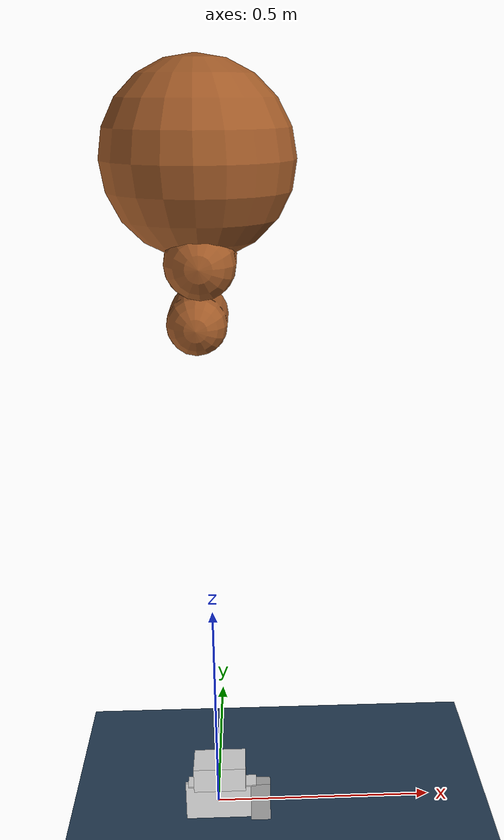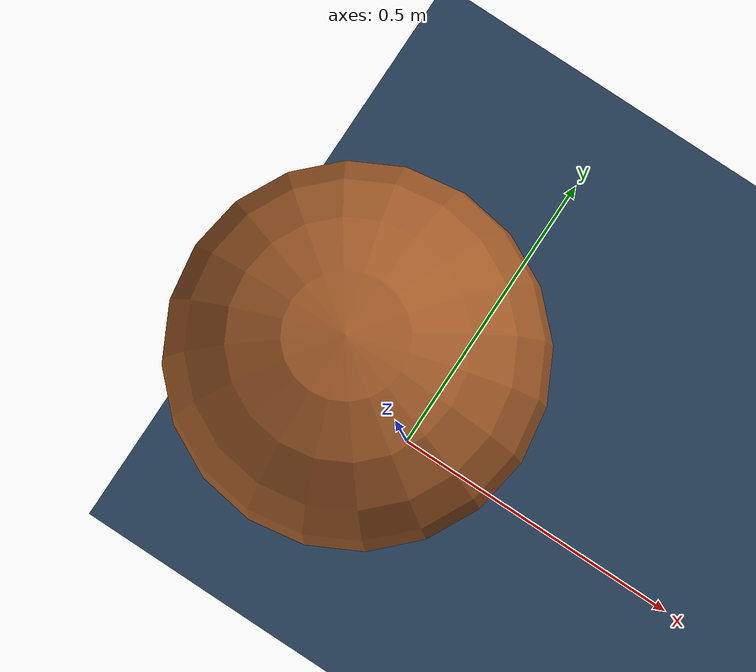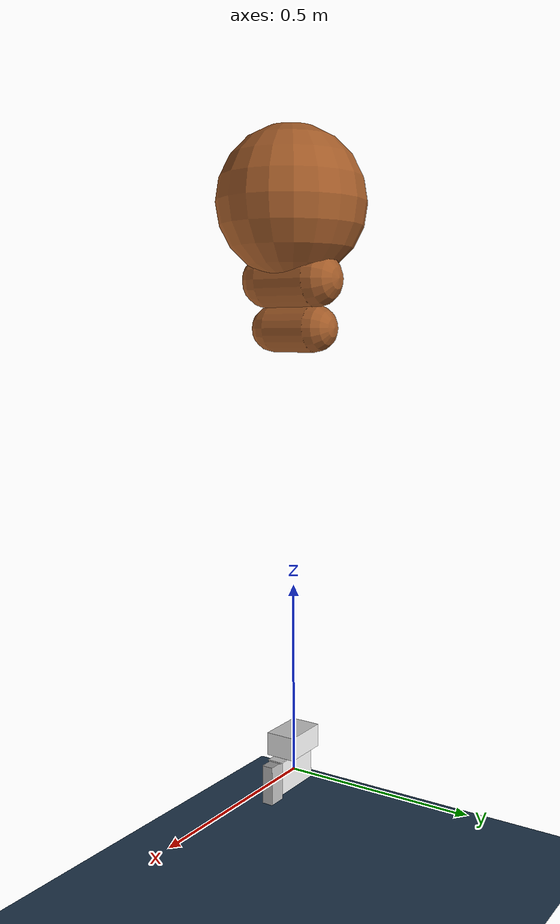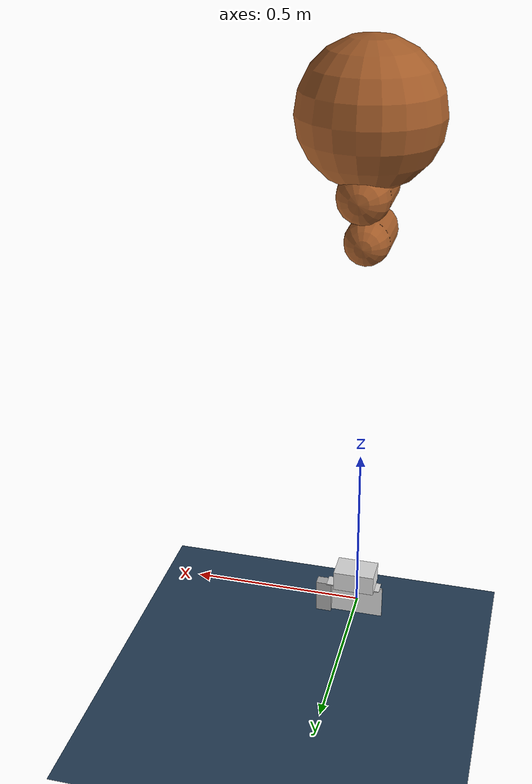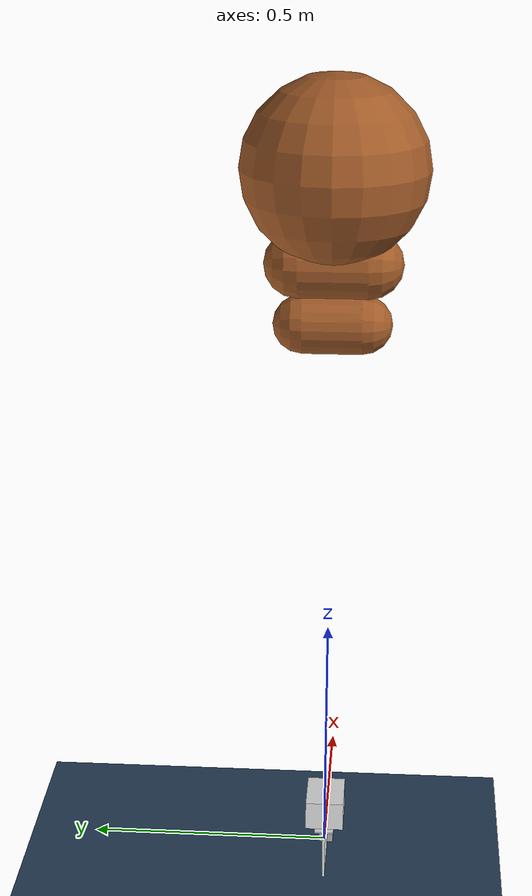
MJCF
<mujoco model="Fish">
    <option gravity="0 0 0" density="1000" viscosity="0.0013" integrator="implicit" timestep="0.001" iterations="100" solver="Newton" tolerance="1e-15" o_solimp="0 0.01 0.01 0.1 2">
        <flag contact="disable"/>
    </option>

    <visual>
        <map force="0.1" zfar="30"/>
        <rgba haze="0.15 0.25 0.35 1"/>
        <global offwidth="2560" offheight="1440" elevation="-20" azimuth="120"/>
    </visual>

    <statistic center="0 0 0.7"/>

    <asset>
        <texture type="skybox" builtin="gradient" rgb1=".3 .5 .7" rgb2="0 0 0" width="32" height="512"/>
        <texture name="body" type="cube" builtin="flat" mark="cross" width="127" height="127" rgb1="0.8 0.6 0.4" rgb2="0.8 0.6 0.4" markrgb="1 1 1" random="0.01"/>
        <material name="body" texture="body" texuniform="true" rgba="0.8 0.6 .4 1"/>
        <texture name="grid" type="2d" builtin="checker" width="512" height="512" rgb1=".1 .2 .3" rgb2=".2 .3 .4"/>
        <material name="grid" texture="grid" texrepeat="1 1" texuniform="true" reflectance=".2"/>

        <mesh name="finTop" file="finTop.obj"/>
        <mesh name="finTail" file="finTail.obj"/>

        <texture name="acrylic" type="cube" builtin="flat" mark="cross" width="127" height="127" rgb1=".9 .9 .9" rgb2=".9 .9 .9" markrgb="1 1 1" random="0.01"/>
        <material name="acrylic" texture="acrylic" texuniform="true"/>

        <texture name="alu" type="cube" builtin="flat" mark="cross" width="127" height="127" rgb1=".7 .7 .7" rgb2=".7 .7 .7" markrgb="1 1 1" random="0.01"/>
        <material name="alu" texture="alu" texuniform="true"/>

        <texture name="marker" type="cube" builtin="flat" mark="cross" width="127" height="127" rgb1=".9 .4 .1" rgb2=".9 .4 .1" markrgb="1 1 1" random="0.01"/>
        <material name="marker" texture="marker" texuniform="true"/>
    </asset>

    <default>
        <motor ctrlrange="-1 1" ctrllimited="true"/>

        <default class="body">
            <!-- geoms -->
            <geom type="capsule" condim="1" friction=".7" solimp=".9 .99 .003" solref=".015 1" material="body"/>

        </default>

        <joint type="hinge" pos="0 0 0" axis="0 0 1" range="-80 80" stiffness="0.65" damping="0.0"/>
        <geom fluidcoef="0.1 0.1 0.1 2.0 1.0" condim="1"/>
        <tendon width="0.001" rgba=".9 .6 .5 1" stiffness="20000" damping="10"/>
    </default>

    <worldbody>
        <geom name="floor" pos="0 0 -0.2" size="0 0 .05" type="plane" material="grid"/>
        <light name="spotlight" mode="targetbodycom" target="torso" diffuse=".8 .8 .8" specular="0.3 0.3 0.3" pos="0 -6 4" cutoff="30"/>

        <body name="torso" pos="0 0 1.282" childclass="body">
            <light name="top" pos="0 0 2" mode="trackcom"/>
            <camera name="back" pos="-3 0 1" xyaxes="0 -1 0 1 0 2" mode="trackcom"/>
            <camera name="side" pos="0 -3 1" xyaxes="1 0 0 0 1 2" mode="trackcom"/>

            <geom name="torso" fromto="0 -.07 0 0 .07 0" size=".07"/>
            <geom name="waist_upper" fromto="-.01 -.06 -.12 -.01 .06 -.12" size=".06"/>

            <body name="head" pos="0 0 .19">
                <geom name="head" type="sphere" size=".19"/>
                <camera name="egocentric" pos=".09 0 0" xyaxes="0 -1 0 .1 0 1" fovy="80"/>
            </body>
        </body>

        <body pos="0 0 0">
            <geom name="headPlate" type="box" pos="0 0 0" size="0.077 0.0025 0.05" material="acrylic" density="1180" fluidshape="ellipsoid"/>
            <geom name="headTopPlate" type="box" pos="0.01 0 0.0515" size="0.08 0.02 0.0015" material="acrylic" density="1180"/>
            <geom name="headTopElectric" type="box" pos="0.005 0 0.083" size="0.06 0.04 0.03" material="acrylic"/>
            <geom name="headAttachment" type="box" pos="0.1 0 0" size="0.023 0.015 0.05" material="alu" mass="0.08" fluidshape="ellipsoid"/>
        </body>

    </worldbody>

</mujoco>
